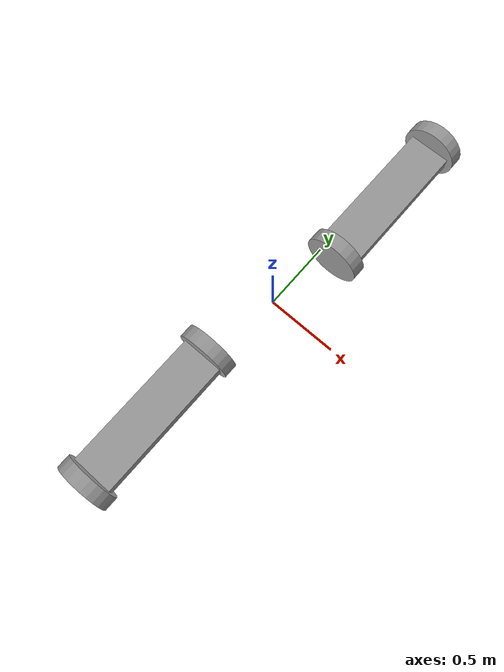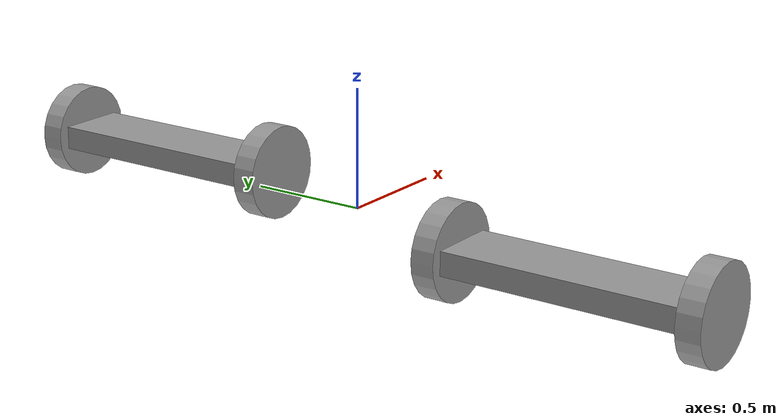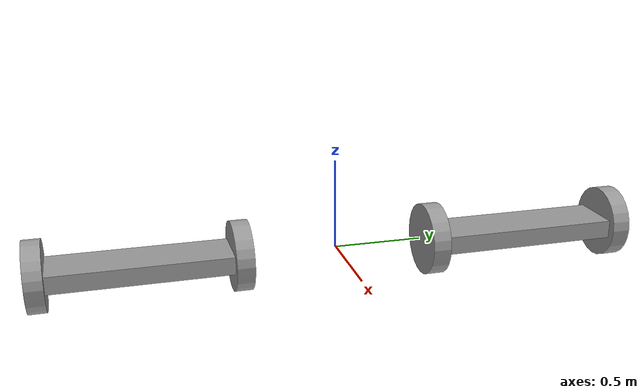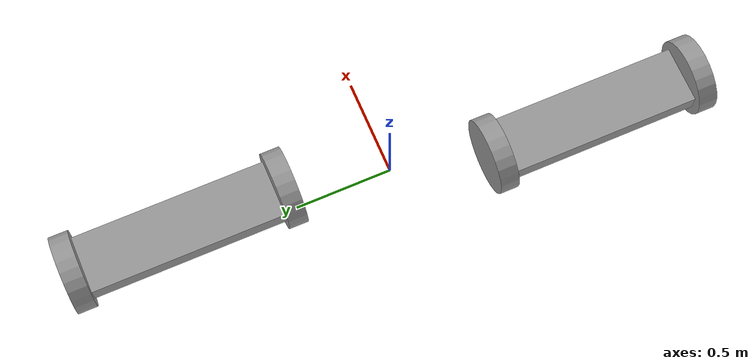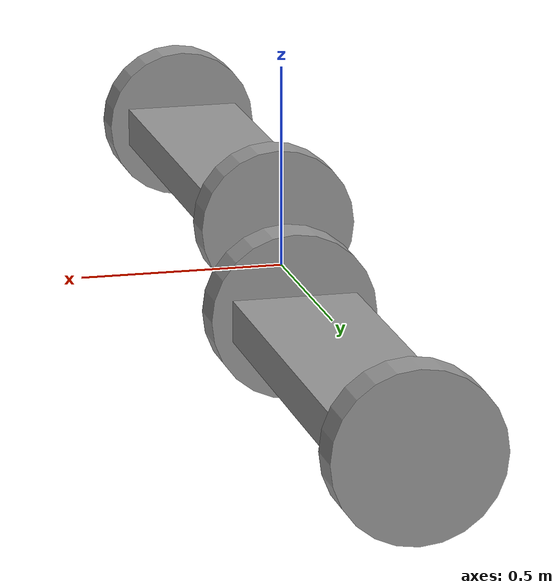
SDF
<?xml version='1.0'?>
<sdf version='1.6'>
  <model name='robots'>
    <model name='robot'>
      <link name='link_3'>
        <pose frame=''>0 0 0 0 -0 0</pose>
        <inertial>
          <mass>1</mass>
          <inertia>
            <ixx>0.166667</ixx>
            <ixy>0</ixy>
            <ixz>0</ixz>
            <iyy>0.166667</iyy>
            <iyz>0</iyz>
            <izz>0.166667</izz>
          </inertia>
          <pose frame=''>0 0 0.2 0 -0 0</pose>
        </inertial>
        <gravity>1</gravity>
        <self_collide>0</self_collide>
        <kinematic>0</kinematic>
        <visual name='visual'>
          <pose frame=''>0 0 0 0 -0 0</pose>
          <geometry>
            <box>
              <size>0.3 1 0.1</size>
            </box>
          </geometry>
          <material>
            <lighting>1</lighting>
            <script>
              <uri>file://media/materials/scripts/gazebo.material</uri>
              <name>Gazebo/Grey</name>
            </script>
            <shader type='pixel'>
              <normal_map>__default__</normal_map>
            </shader>
            <ambient>0.3 0.3 0.3 1</ambient>
            <diffuse>0.7 0.7 0.7 1</diffuse>
            <specular>0.01 0.01 0.01 1</specular>
            <emissive>0 0 0 1</emissive>
          </material>
          <transparency>0</transparency>
          <cast_shadows>1</cast_shadows>
        </visual>
        <collision name='collision'>
          <laser_retro>0</laser_retro>
          <max_contacts>10</max_contacts>
          <pose frame=''>0 0 0 0 -0 0</pose>
          <geometry>
            <box>
              <size>0.3 1 0.1</size>
            </box>
          </geometry>
          <surface>
            <friction>
              <ode>
                <mu>1</mu>
                <mu2>1</mu2>
                <fdir1>0 0 0</fdir1>
                <slip1>0</slip1>
                <slip2>0</slip2>
              </ode>
              <torsional>
                <coefficient>1</coefficient>
                <patch_radius>0</patch_radius>
                <surface_radius>0</surface_radius>
                <use_patch_radius>1</use_patch_radius>
                <ode>
                  <slip>0</slip>
                </ode>
              </torsional>
            </friction>
            <bounce>
              <restitution_coefficient>0</restitution_coefficient>
              <threshold>1e+06</threshold>
            </bounce>
            <contact>
              <collide_without_contact>0</collide_without_contact>
              <collide_without_contact_bitmask>1</collide_without_contact_bitmask>
              <collide_bitmask>1</collide_bitmask>
              <ode>
                <soft_cfm>0</soft_cfm>
                <soft_erp>0.2</soft_erp>
                <kp>1e+13</kp>
                <kd>1</kd>
                <max_vel>0.01</max_vel>
                <min_depth>0</min_depth>
              </ode>
              <bullet>
                <split_impulse>1</split_impulse>
                <split_impulse_penetration_threshold>-0.01</split_impulse_penetration_threshold>
                <soft_cfm>0</soft_cfm>
                <soft_erp>0.2</soft_erp>
                <kp>1e+13</kp>
                <kd>1</kd>
              </bullet>
            </contact>
          </surface>
        </collision>
      </link>
      <link name='link_4'>
        <pose frame=''>0 -0.550019 0 1.5707 -0 0</pose>
        <inertial>
          <mass>1</mass>
          <inertia>
            <ixx>0.145833</ixx>
            <ixy>0</ixy>
            <ixz>0</ixz>
            <iyy>0.145833</iyy>
            <iyz>0</iyz>
            <izz>0.125</izz>
          </inertia>
          <pose frame=''>0 0 0.2 1.5707 -0 0</pose>
        </inertial>
        <gravity>1</gravity>
        <self_collide>0</self_collide>
        <kinematic>0</kinematic>
        <visual name='visual'>
          <pose frame=''>0 0 0 0 -0 0</pose>
          <geometry>
            <cylinder>
              <radius>0.2</radius>
              <length>0.1</length>
            </cylinder>
          </geometry>
          <material>
            <lighting>1</lighting>
            <script>
              <uri>file://media/materials/scripts/gazebo.material</uri>
              <name>Gazebo/Grey</name>
            </script>
            <shader type='pixel'>
              <normal_map>__default__</normal_map>
            </shader>
            <ambient>0.3 0.3 0.3 1</ambient>
            <diffuse>0.7 0.7 0.7 1</diffuse>
            <specular>0.01 0.01 0.01 1</specular>
            <emissive>0 0 0 1</emissive>
          </material>
          <transparency>0</transparency>
          <cast_shadows>1</cast_shadows>
        </visual>
        <collision name='collision'>
          <laser_retro>0</laser_retro>
          <max_contacts>10</max_contacts>
          <pose frame=''>0 0 0 0 -0 0</pose>
          <geometry>
            <cylinder>
              <radius>0.2</radius>
              <length>0.1</length>
            </cylinder>
          </geometry>
          <surface>
            <friction>
              <ode>
                <mu>1</mu>
                <mu2>1</mu2>
                <fdir1>0 0 0</fdir1>
                <slip1>0</slip1>
                <slip2>0</slip2>
              </ode>
              <torsional>
                <coefficient>1</coefficient>
                <patch_radius>0</patch_radius>
                <surface_radius>0</surface_radius>
                <use_patch_radius>1</use_patch_radius>
                <ode>
                  <slip>0</slip>
                </ode>
              </torsional>
            </friction>
            <bounce>
              <restitution_coefficient>0</restitution_coefficient>
              <threshold>1e+06</threshold>
            </bounce>
            <contact>
              <collide_without_contact>0</collide_without_contact>
              <collide_without_contact_bitmask>1</collide_without_contact_bitmask>
              <collide_bitmask>1</collide_bitmask>
              <ode>
                <soft_cfm>0</soft_cfm>
                <soft_erp>0.2</soft_erp>
                <kp>1e+13</kp>
                <kd>1</kd>
                <max_vel>0.01</max_vel>
                <min_depth>0</min_depth>
              </ode>
              <bullet>
                <split_impulse>1</split_impulse>
                <split_impulse_penetration_threshold>-0.01</split_impulse_penetration_threshold>
                <soft_cfm>0</soft_cfm>
                <soft_erp>0.2</soft_erp>
                <kp>1e+13</kp>
                <kd>1</kd>
              </bullet>
            </contact>
          </surface>
        </collision>
      </link>
      <link name='link_4_clone'>
        <pose frame=''>0 0.550019 0 1.5707 -0 0</pose>
        <inertial>
          <mass>1</mass>
          <inertia>
            <ixx>0.145833</ixx>
            <ixy>0</ixy>
            <ixz>0</ixz>
            <iyy>0.145833</iyy>
            <iyz>0</iyz>
            <izz>0.125</izz>
          </inertia>
          <pose frame=''>0 0 0.2 1.5707 -0 0</pose>
        </inertial>
        <self_collide>0</self_collide>
        <kinematic>0</kinematic>
        <visual name='visual'>
          <pose frame=''>0 0 0 0 -0 0</pose>
          <geometry>
            <cylinder>
              <radius>0.2</radius>
              <length>0.1</length>
            </cylinder>
          </geometry>
          <material>
            <lighting>1</lighting>
            <script>
              <uri>file://media/materials/scripts/gazebo.material</uri>
              <name>Gazebo/Grey</name>
            </script>
            <shader type='pixel'>
              <normal_map>__default__</normal_map>
            </shader>
            <ambient>0.3 0.3 0.3 1</ambient>
            <diffuse>0.7 0.7 0.7 1</diffuse>
            <specular>0.01 0.01 0.01 1</specular>
            <emissive>0 0 0 1</emissive>
          </material>
          <transparency>0</transparency>
          <cast_shadows>1</cast_shadows>
        </visual>
        <collision name='collision'>
          <laser_retro>0</laser_retro>
          <max_contacts>10</max_contacts>
          <pose frame=''>0 0 0 0 -0 0</pose>
          <geometry>
            <cylinder>
              <radius>0.2</radius>
              <length>0.1</length>
            </cylinder>
          </geometry>
          <surface>
            <friction>
              <ode>
                <mu>1</mu>
                <mu2>1</mu2>
                <fdir1>0 0 0</fdir1>
                <slip1>0</slip1>
                <slip2>0</slip2>
              </ode>
              <torsional>
                <coefficient>1</coefficient>
                <patch_radius>0</patch_radius>
                <surface_radius>0</surface_radius>
                <use_patch_radius>1</use_patch_radius>
                <ode>
                  <slip>0</slip>
                </ode>
              </torsional>
            </friction>
            <bounce>
              <restitution_coefficient>0</restitution_coefficient>
              <threshold>1e+06</threshold>
            </bounce>
            <contact>
              <collide_without_contact>0</collide_without_contact>
              <collide_without_contact_bitmask>1</collide_without_contact_bitmask>
              <collide_bitmask>1</collide_bitmask>
              <ode>
                <soft_cfm>0</soft_cfm>
                <soft_erp>0.2</soft_erp>
                <kp>1e+13</kp>
                <kd>1</kd>
                <max_vel>0.01</max_vel>
                <min_depth>0</min_depth>
              </ode>
              <bullet>
                <split_impulse>1</split_impulse>
                <split_impulse_penetration_threshold>-0.01</split_impulse_penetration_threshold>
                <soft_cfm>0</soft_cfm>
                <soft_erp>0.2</soft_erp>
                <kp>1e+13</kp>
                <kd>1</kd>
              </bullet>
            </contact>
          </surface>
        </collision>
      </link>
      <joint name='link_3_JOINT_7' type='revolute'>
        <parent>link_3</parent>
        <child>link_4</child>
        <pose frame=''>0 0 0 0 -0 0</pose>
        <axis>
          <xyz>0 0 1</xyz>
          <use_parent_model_frame>0</use_parent_model_frame>
          <limit>
            <lower>-1.79769e+308</lower>
            <upper>1.79769e+308</upper>
            <effort>-1</effort>
            <velocity>-1</velocity>
          </limit>
          <dynamics>
            <spring_reference>0</spring_reference>
            <spring_stiffness>0</spring_stiffness>
            <damping>0</damping>
          </dynamics>
        </axis>
        <physics>
          <ode>
            <limit>
              <cfm>0</cfm>
              <erp>0.2</erp>
            </limit>
            <suspension>
              <cfm>0</cfm>
              <erp>0.2</erp>
            </suspension>
          </ode>
        </physics>
      </joint>
      <joint name='link_3_JOINT_8' type='revolute'>
        <parent>link_3</parent>
        <child>link_4_clone</child>
        <pose frame=''>0 0 0 0 -0 0</pose>
        <axis>
          <xyz>0 0 1</xyz>
          <use_parent_model_frame>0</use_parent_model_frame>
          <limit>
            <lower>-1.79769e+308</lower>
            <upper>1.79769e+308</upper>
            <effort>-1</effort>
            <velocity>-1</velocity>
          </limit>
          <dynamics>
            <spring_reference>0</spring_reference>
            <spring_stiffness>0</spring_stiffness>
            <damping>0</damping>
          </dynamics>
        </axis>
        <physics>
          <ode>
            <limit>
              <cfm>0</cfm>
              <erp>0.2</erp>
            </limit>
            <suspension>
              <cfm>0</cfm>
              <erp>0.2</erp>
            </suspension>
          </ode>
        </physics>
      </joint>
      <static>0</static>
      <allow_auto_disable>1</allow_auto_disable>
      <pose frame=''>-0.109886 -1.07252 -0.037599 0 -0 0</pose>
    </model>
    <model name='robot_clone'>
      <link name='link_3'>
        <pose frame=''>0 0 0 0 -0 0</pose>
        <inertial>
          <mass>1</mass>
          <inertia>
            <ixx>0.166667</ixx>
            <ixy>0</ixy>
            <ixz>0</ixz>
            <iyy>0.166667</iyy>
            <iyz>0</iyz>
            <izz>0.166667</izz>
          </inertia>
          <pose frame=''>0 0 0.2 0 -0 0</pose>
        </inertial>
        <gravity>1</gravity>
        <self_collide>0</self_collide>
        <kinematic>0</kinematic>
        <visual name='visual'>
          <pose frame=''>0 0 0 0 -0 0</pose>
          <geometry>
            <box>
              <size>0.3 1 0.1</size>
            </box>
          </geometry>
          <material>
            <lighting>1</lighting>
            <script>
              <uri>file://media/materials/scripts/gazebo.material</uri>
              <name>Gazebo/Grey</name>
            </script>
            <shader type='pixel'>
              <normal_map>__default__</normal_map>
            </shader>
            <ambient>0.3 0.3 0.3 1</ambient>
            <diffuse>0.7 0.7 0.7 1</diffuse>
            <specular>0.01 0.01 0.01 1</specular>
            <emissive>0 0 0 1</emissive>
          </material>
          <transparency>0</transparency>
          <cast_shadows>1</cast_shadows>
        </visual>
        <collision name='collision'>
          <laser_retro>0</laser_retro>
          <max_contacts>10</max_contacts>
          <pose frame=''>0 0 0 0 -0 0</pose>
          <geometry>
            <box>
              <size>0.3 1 0.1</size>
            </box>
          </geometry>
          <surface>
            <friction>
              <ode>
                <mu>1</mu>
                <mu2>1</mu2>
                <fdir1>0 0 0</fdir1>
                <slip1>0</slip1>
                <slip2>0</slip2>
              </ode>
              <torsional>
                <coefficient>1</coefficient>
                <patch_radius>0</patch_radius>
                <surface_radius>0</surface_radius>
                <use_patch_radius>1</use_patch_radius>
                <ode>
                  <slip>0</slip>
                </ode>
              </torsional>
            </friction>
            <bounce>
              <restitution_coefficient>0</restitution_coefficient>
              <threshold>1e+06</threshold>
            </bounce>
            <contact>
              <collide_without_contact>0</collide_without_contact>
              <collide_without_contact_bitmask>1</collide_without_contact_bitmask>
              <collide_bitmask>1</collide_bitmask>
              <ode>
                <soft_cfm>0</soft_cfm>
                <soft_erp>0.2</soft_erp>
                <kp>1e+13</kp>
                <kd>1</kd>
                <max_vel>0.01</max_vel>
                <min_depth>0</min_depth>
              </ode>
              <bullet>
                <split_impulse>1</split_impulse>
                <split_impulse_penetration_threshold>-0.01</split_impulse_penetration_threshold>
                <soft_cfm>0</soft_cfm>
                <soft_erp>0.2</soft_erp>
                <kp>1e+13</kp>
                <kd>1</kd>
              </bullet>
            </contact>
          </surface>
        </collision>
      </link>
      <link name='link_4'>
        <pose frame=''>0 -0.550019 0 1.5707 -0 0</pose>
        <inertial>
          <mass>1</mass>
          <inertia>
            <ixx>0.145833</ixx>
            <ixy>0</ixy>
            <ixz>0</ixz>
            <iyy>0.145833</iyy>
            <iyz>0</iyz>
            <izz>0.125</izz>
          </inertia>
          <pose frame=''>0 0 0.2 1.5707 -0 0</pose>
        </inertial>
        <gravity>1</gravity>
        <self_collide>0</self_collide>
        <kinematic>0</kinematic>
        <visual name='visual'>
          <pose frame=''>0 0 0 0 -0 0</pose>
          <geometry>
            <cylinder>
              <radius>0.2</radius>
              <length>0.1</length>
            </cylinder>
          </geometry>
          <material>
            <lighting>1</lighting>
            <script>
              <uri>file://media/materials/scripts/gazebo.material</uri>
              <name>Gazebo/Grey</name>
            </script>
            <shader type='pixel'>
              <normal_map>__default__</normal_map>
            </shader>
            <ambient>0.3 0.3 0.3 1</ambient>
            <diffuse>0.7 0.7 0.7 1</diffuse>
            <specular>0.01 0.01 0.01 1</specular>
            <emissive>0 0 0 1</emissive>
          </material>
          <transparency>0</transparency>
          <cast_shadows>1</cast_shadows>
        </visual>
        <collision name='collision'>
          <laser_retro>0</laser_retro>
          <max_contacts>10</max_contacts>
          <pose frame=''>0 0 0 0 -0 0</pose>
          <geometry>
            <cylinder>
              <radius>0.2</radius>
              <length>0.1</length>
            </cylinder>
          </geometry>
          <surface>
            <friction>
              <ode>
                <mu>1</mu>
                <mu2>1</mu2>
                <fdir1>0 0 0</fdir1>
                <slip1>0</slip1>
                <slip2>0</slip2>
              </ode>
              <torsional>
                <coefficient>1</coefficient>
                <patch_radius>0</patch_radius>
                <surface_radius>0</surface_radius>
                <use_patch_radius>1</use_patch_radius>
                <ode>
                  <slip>0</slip>
                </ode>
              </torsional>
            </friction>
            <bounce>
              <restitution_coefficient>0</restitution_coefficient>
              <threshold>1e+06</threshold>
            </bounce>
            <contact>
              <collide_without_contact>0</collide_without_contact>
              <collide_without_contact_bitmask>1</collide_without_contact_bitmask>
              <collide_bitmask>1</collide_bitmask>
              <ode>
                <soft_cfm>0</soft_cfm>
                <soft_erp>0.2</soft_erp>
                <kp>1e+13</kp>
                <kd>1</kd>
                <max_vel>0.01</max_vel>
                <min_depth>0</min_depth>
              </ode>
              <bullet>
                <split_impulse>1</split_impulse>
                <split_impulse_penetration_threshold>-0.01</split_impulse_penetration_threshold>
                <soft_cfm>0</soft_cfm>
                <soft_erp>0.2</soft_erp>
                <kp>1e+13</kp>
                <kd>1</kd>
              </bullet>
            </contact>
          </surface>
        </collision>
      </link>
      <link name='link_4_clone'>
        <pose frame=''>0 0.550019 0 1.5707 -0 0</pose>
        <inertial>
          <mass>1</mass>
          <inertia>
            <ixx>0.145833</ixx>
            <ixy>0</ixy>
            <ixz>0</ixz>
            <iyy>0.145833</iyy>
            <iyz>0</iyz>
            <izz>0.125</izz>
          </inertia>
          <pose frame=''>0 0 0.2 1.5707 -0 0</pose>
        </inertial>
        <self_collide>0</self_collide>
        <kinematic>0</kinematic>
        <visual name='visual'>
          <pose frame=''>0 0 0 0 -0 0</pose>
          <geometry>
            <cylinder>
              <radius>0.2</radius>
              <length>0.1</length>
            </cylinder>
          </geometry>
          <material>
            <lighting>1</lighting>
            <script>
              <uri>file://media/materials/scripts/gazebo.material</uri>
              <name>Gazebo/Grey</name>
            </script>
            <shader type='pixel'>
              <normal_map>__default__</normal_map>
            </shader>
            <ambient>0.3 0.3 0.3 1</ambient>
            <diffuse>0.7 0.7 0.7 1</diffuse>
            <specular>0.01 0.01 0.01 1</specular>
            <emissive>0 0 0 1</emissive>
          </material>
          <transparency>0</transparency>
          <cast_shadows>1</cast_shadows>
        </visual>
        <collision name='collision'>
          <laser_retro>0</laser_retro>
          <max_contacts>10</max_contacts>
          <pose frame=''>0 0 0 0 -0 0</pose>
          <geometry>
            <cylinder>
              <radius>0.2</radius>
              <length>0.1</length>
            </cylinder>
          </geometry>
          <surface>
            <friction>
              <ode>
                <mu>1</mu>
                <mu2>1</mu2>
                <fdir1>0 0 0</fdir1>
                <slip1>0</slip1>
                <slip2>0</slip2>
              </ode>
              <torsional>
                <coefficient>1</coefficient>
                <patch_radius>0</patch_radius>
                <surface_radius>0</surface_radius>
                <use_patch_radius>1</use_patch_radius>
                <ode>
                  <slip>0</slip>
                </ode>
              </torsional>
            </friction>
            <bounce>
              <restitution_coefficient>0</restitution_coefficient>
              <threshold>1e+06</threshold>
            </bounce>
            <contact>
              <collide_without_contact>0</collide_without_contact>
              <collide_without_contact_bitmask>1</collide_without_contact_bitmask>
              <collide_bitmask>1</collide_bitmask>
              <ode>
                <soft_cfm>0</soft_cfm>
                <soft_erp>0.2</soft_erp>
                <kp>1e+13</kp>
                <kd>1</kd>
                <max_vel>0.01</max_vel>
                <min_depth>0</min_depth>
              </ode>
              <bullet>
                <split_impulse>1</split_impulse>
                <split_impulse_penetration_threshold>-0.01</split_impulse_penetration_threshold>
                <soft_cfm>0</soft_cfm>
                <soft_erp>0.2</soft_erp>
                <kp>1e+13</kp>
                <kd>1</kd>
              </bullet>
            </contact>
          </surface>
        </collision>
      </link>
      <joint name='link_3_JOINT_7' type='revolute'>
        <parent>link_3</parent>
        <child>link_4</child>
        <pose frame=''>0 0 0 0 -0 0</pose>
        <axis>
          <xyz>0 0 1</xyz>
          <use_parent_model_frame>0</use_parent_model_frame>
          <limit>
            <lower>-1.79769e+308</lower>
            <upper>1.79769e+308</upper>
            <effort>-1</effort>
            <velocity>-1</velocity>
          </limit>
          <dynamics>
            <spring_reference>0</spring_reference>
            <spring_stiffness>0</spring_stiffness>
            <damping>0</damping>
          </dynamics>
        </axis>
        <physics>
          <ode>
            <limit>
              <cfm>0</cfm>
              <erp>0.2</erp>
            </limit>
            <suspension>
              <cfm>0</cfm>
              <erp>0.2</erp>
            </suspension>
          </ode>
        </physics>
      </joint>
      <joint name='link_3_JOINT_8' type='revolute'>
        <parent>link_3</parent>
        <child>link_4_clone</child>
        <pose frame=''>0 0 0 0 -0 0</pose>
        <axis>
          <xyz>0 0 1</xyz>
          <use_parent_model_frame>0</use_parent_model_frame>
          <limit>
            <lower>-1.79769e+308</lower>
            <upper>1.79769e+308</upper>
            <effort>-1</effort>
            <velocity>-1</velocity>
          </limit>
          <dynamics>
            <spring_reference>0</spring_reference>
            <spring_stiffness>0</spring_stiffness>
            <damping>0</damping>
          </dynamics>
        </axis>
        <physics>
          <ode>
            <limit>
              <cfm>0</cfm>
              <erp>0.2</erp>
            </limit>
            <suspension>
              <cfm>0</cfm>
              <erp>0.2</erp>
            </suspension>
          </ode>
        </physics>
      </joint>
      <static>0</static>
      <allow_auto_disable>1</allow_auto_disable>
      <pose frame=''>0.109888 1.07253 0.037599 0 -0 0</pose>
    </model>
    <static>0</static>
    <allow_auto_disable>1</allow_auto_disable>
  </model>
</sdf>
